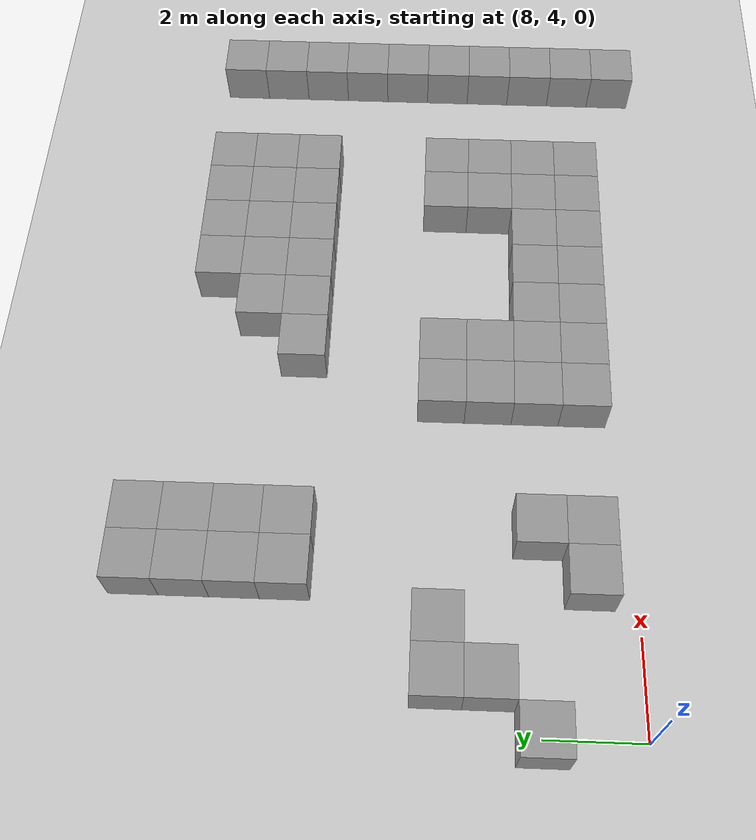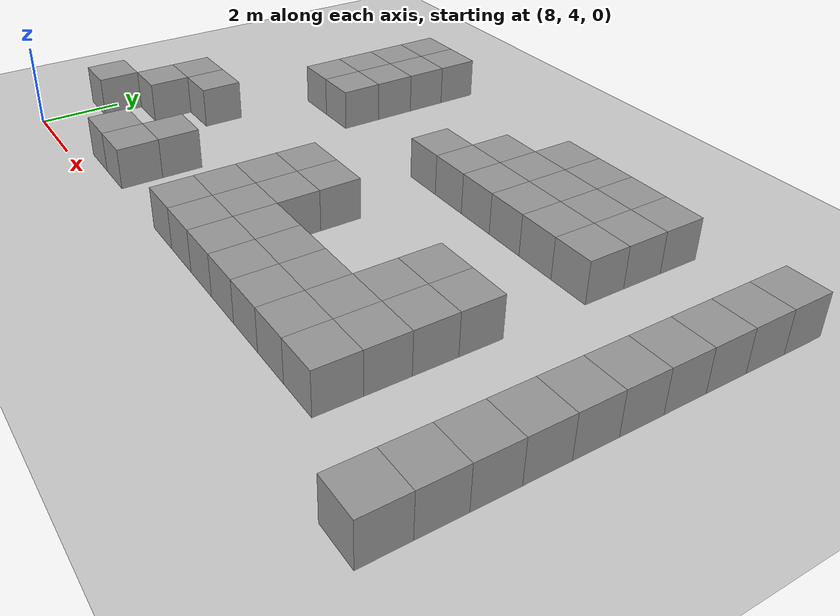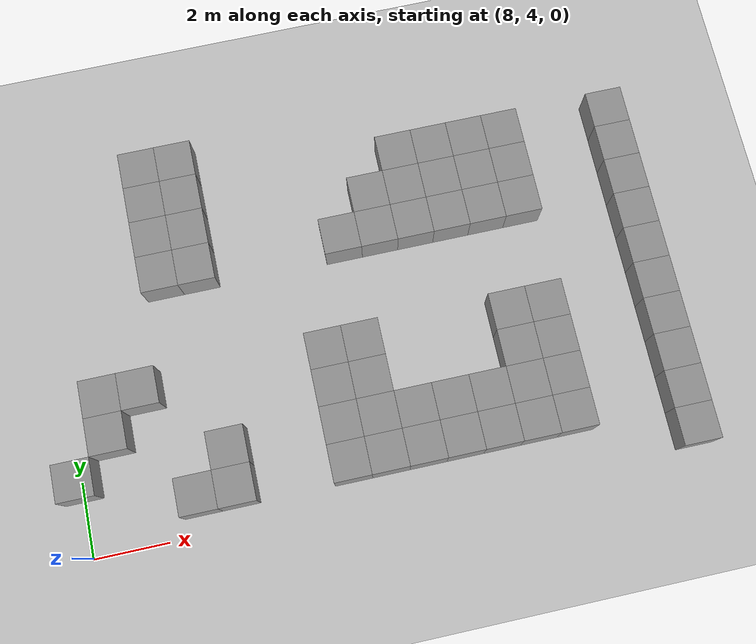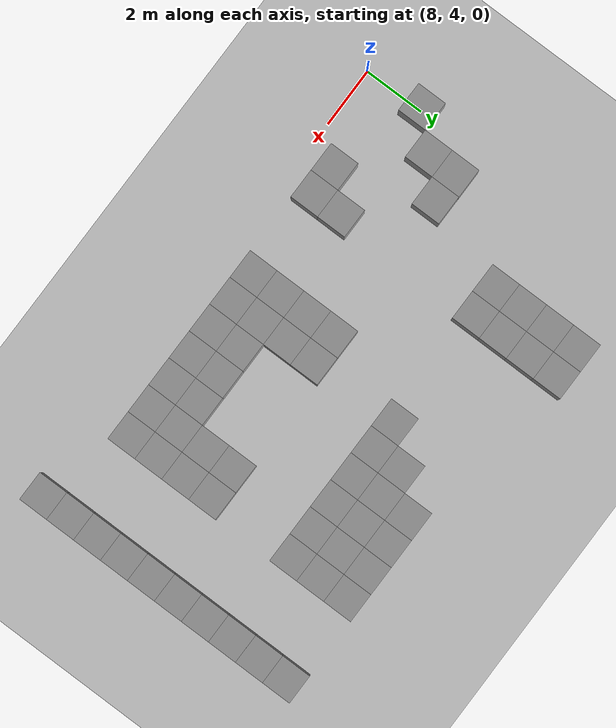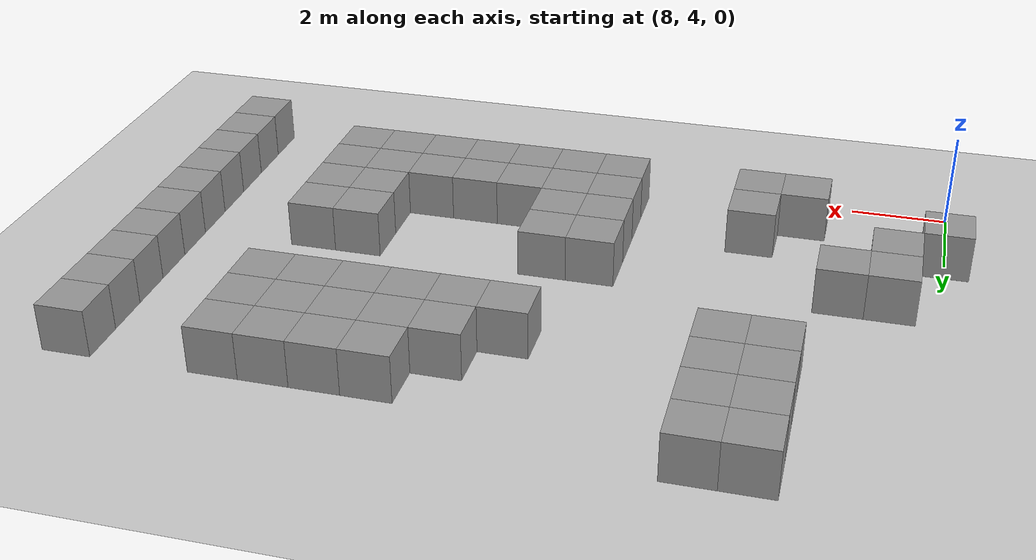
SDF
<sdf version="1.4">
 <world name="default">
  <model name="ground_plane">
   <static>true</static>
   <link name="link">
    <collision name="collision">
     <geometry><plane><normal>0 0 1</normal><size>100 100</size></plane></geometry>
     <surface><friction><ode><mu>100</mu><mu2>50</mu2></ode></friction></surface>
    </collision>
    <visual name="visual">
     <cast_shadows>0</cast_shadows>
     <geometry><plane><normal>0 0 1</normal><size>100 100</size></plane></geometry>
     <material>
      <script><uri>file://media/materials/scripts/gazebo.material</uri><name>Gazebo/Grey</name></script>
     </material>
    </visual>
    <velocity_decay><linear>0</linear><angular>0</angular></velocity_decay>
   </link>
  </model>
  <model name="unit_box_160">
   <pose>24 13.0005 0.5 0 -0 2.1e-05</pose>
   <static>true</static>
   <link name="link">
    <inertial>
     <mass>1</mass>
     <inertia><ixx>1</ixx><ixy>0</ixy><ixz>0</ixz><iyy>1</iyy><iyz>0</iyz><izz>1</izz></inertia>
    </inertial>
    <collision name="collision"><geometry><box><size>1 1 1</size></box></geometry></collision>
    <visual name="visual">
     <geometry><box><size>1 1 1</size></box></geometry>
     <material>
      <script><uri>file://media/materials/scripts/gazebo.material</uri><name>Gazebo/Grey</name></script>
     </material>
    </visual>
    <velocity_decay><linear>0</linear><angular>0</angular></velocity_decay>
   </link>
   <static>true</static>
  </model>
  <model name="unit_box_161">
   <pose>24.0001 12.0005 0.5 0 -0 2.2e-05</pose>
   <static>true</static>
   <link name="link">
    <inertial>
     <mass>1</mass>
     <inertia><ixx>1</ixx><ixy>0</ixy><ixz>0</ixz><iyy>1</iyy><iyz>0</iyz><izz>1</izz></inertia>
    </inertial>
    <collision name="collision"><geometry><box><size>1 1 1</size></box></geometry></collision>
    <visual name="visual">
     <geometry><box><size>1 1 1</size></box></geometry>
     <material>
      <script><uri>file://media/materials/scripts/gazebo.material</uri><name>Gazebo/Grey</name></script>
     </material>
    </visual>
    <velocity_decay><linear>0</linear><angular>0</angular></velocity_decay>
   </link>
   <static>true</static>
  </model>
  <model name="unit_box_162">
   <pose>24.0002 11.0004 0.5 0 -0 4e-05</pose>
   <static>true</static>
   <link name="link">
    <inertial>
     <mass>1</mass>
     <inertia><ixx>1</ixx><ixy>0</ixy><ixz>0</ixz><iyy>1</iyy><iyz>0</iyz><izz>1</izz></inertia>
    </inertial>
    <collision name="collision"><geometry><box><size>1 1 1</size></box></geometry></collision>
    <visual name="visual">
     <geometry><box><size>1 1 1</size></box></geometry>
     <material>
      <script><uri>file://media/materials/scripts/gazebo.material</uri><name>Gazebo/Grey</name></script>
     </material>
    </visual>
    <velocity_decay><linear>0</linear><angular>0</angular></velocity_decay>
   </link>
   <static>true</static>
  </model>
  <model name="unit_box_188">
   <pose>24.0001 10.0004 0.5 0 -0 3.9e-05</pose>
   <static>true</static>
   <link name="link">
    <inertial>
     <mass>1</mass>
     <inertia><ixx>1</ixx><ixy>0</ixy><ixz>0</ixz><iyy>1</iyy><iyz>0</iyz><izz>1</izz></inertia>
    </inertial>
    <collision name="collision"><geometry><box><size>1 1 1</size></box></geometry></collision>
    <visual name="visual">
     <geometry><box><size>1 1 1</size></box></geometry>
     <material>
      <script><uri>file://media/materials/scripts/gazebo.material</uri><name>Gazebo/Grey</name></script>
     </material>
    </visual>
    <velocity_decay><linear>0</linear><angular>0</angular></velocity_decay>
   </link>
   <static>true</static>
  </model>
  <model name="unit_box_189">
   <pose>24.0001 9.00043 0.5 0 -0 4.6e-05</pose>
   <static>true</static>
   <link name="link">
    <inertial>
     <mass>1</mass>
     <inertia><ixx>1</ixx><ixy>0</ixy><ixz>0</ixz><iyy>1</iyy><iyz>0</iyz><izz>1</izz></inertia>
    </inertial>
    <collision name="collision"><geometry><box><size>1 1 1</size></box></geometry></collision>
    <visual name="visual">
     <geometry><box><size>1 1 1</size></box></geometry>
     <material>
      <script><uri>file://media/materials/scripts/gazebo.material</uri><name>Gazebo/Grey</name></script>
     </material>
    </visual>
    <velocity_decay><linear>0</linear><angular>0</angular></velocity_decay>
   </link>
   <static>true</static>
  </model>
  <model name="unit_box_190">
   <pose>24.0001 8.00042 0.5 0 -0 3.9e-05</pose>
   <static>true</static>
   <link name="link">
    <inertial>
     <mass>1</mass>
     <inertia><ixx>1</ixx><ixy>0</ixy><ixz>0</ixz><iyy>1</iyy><iyz>0</iyz><izz>1</izz></inertia>
    </inertial>
    <collision name="collision"><geometry><box><size>1 1 1</size></box></geometry></collision>
    <visual name="visual">
     <geometry><box><size>1 1 1</size></box></geometry>
     <material>
      <script><uri>file://media/materials/scripts/gazebo.material</uri><name>Gazebo/Grey</name></script>
     </material>
    </visual>
    <velocity_decay><linear>0</linear><angular>0</angular></velocity_decay>
   </link>
   <static>true</static>
  </model>
  <model name="unit_box_191">
   <pose>24.0002 7.00042 0.5 0 -0 3.8e-05</pose>
   <static>true</static>
   <link name="link">
    <inertial>
     <mass>1</mass>
     <inertia><ixx>1</ixx><ixy>0</ixy><ixz>0</ixz><iyy>1</iyy><iyz>0</iyz><izz>1</izz></inertia>
    </inertial>
    <collision name="collision"><geometry><box><size>1 1 1</size></box></geometry></collision>
    <visual name="visual">
     <geometry><box><size>1 1 1</size></box></geometry>
     <material>
      <script><uri>file://media/materials/scripts/gazebo.material</uri><name>Gazebo/Grey</name></script>
     </material>
    </visual>
    <velocity_decay><linear>0</linear><angular>0</angular></velocity_decay>
   </link>
   <static>true</static>
  </model>
  <model name="unit_box_192">
   <pose>24.0014 6.00042 0.5 0 -0 3.8e-05</pose>
   <static>true</static>
   <link name="link">
    <inertial>
     <mass>1</mass>
     <inertia><ixx>1</ixx><ixy>0</ixy><ixz>0</ixz><iyy>1</iyy><iyz>0</iyz><izz>1</izz></inertia>
    </inertial>
    <collision name="collision"><geometry><box><size>1 1 1</size></box></geometry></collision>
    <visual name="visual">
     <geometry><box><size>1 1 1</size></box></geometry>
     <material>
      <script><uri>file://media/materials/scripts/gazebo.material</uri><name>Gazebo/Grey</name></script>
     </material>
    </visual>
    <velocity_decay><linear>0</linear><angular>0</angular></velocity_decay>
   </link>
   <static>true</static>
  </model>
  <model name="unit_box_194">
   <pose>24.0008 5.00042 0.5 0 -0 3.8e-05</pose>
   <static>true</static>
   <link name="link">
    <inertial>
     <mass>1</mass>
     <inertia><ixx>1</ixx><ixy>0</ixy><ixz>0</ixz><iyy>1</iyy><iyz>0</iyz><izz>1</izz></inertia>
    </inertial>
    <collision name="collision"><geometry><box><size>1 1 1</size></box></geometry></collision>
    <visual name="visual">
     <geometry><box><size>1 1 1</size></box></geometry>
     <material>
      <script><uri>file://media/materials/scripts/gazebo.material</uri><name>Gazebo/Grey</name></script>
     </material>
    </visual>
    <velocity_decay><linear>0</linear><angular>0</angular></velocity_decay>
   </link>
   <static>true</static>
  </model>
  <model name="unit_box_195">
   <pose>24.0001 4.00041 0.5 0 -0 5.9e-05</pose>
   <static>true</static>
   <link name="link">
    <inertial>
     <mass>1</mass>
     <inertia><ixx>1</ixx><ixy>0</ixy><ixz>0</ixz><iyy>1</iyy><iyz>0</iyz><izz>1</izz></inertia>
    </inertial>
    <collision name="collision"><geometry><box><size>1 1 1</size></box></geometry></collision>
    <visual name="visual">
     <geometry><box><size>1 1 1</size></box></geometry>
     <material>
      <script><uri>file://media/materials/scripts/gazebo.material</uri><name>Gazebo/Grey</name></script>
     </material>
    </visual>
    <velocity_decay><linear>0</linear><angular>0</angular></velocity_decay>
   </link>
   <static>true</static>
  </model>
  <model name="unit_box_217_0">
   <pose>8.00001 6.00001 0.5 0 -0 6e-06</pose>
   <link name="link">
    <inertial>
     <mass>1</mass>
     <inertia><ixx>1</ixx><ixy>0</ixy><ixz>0</ixz><iyy>1</iyy><iyz>0</iyz><izz>1</izz></inertia>
    </inertial>
    <collision name="collision"><geometry><box><size>1 1 1</size></box></geometry></collision>
    <visual name="visual">
     <geometry><box><size>1 1 1</size></box></geometry>
     <material>
      <script><uri>file://media/materials/scripts/gazebo.material</uri><name>Gazebo/Grey</name></script>
     </material>
    </visual>
    <velocity_decay><linear>0</linear><angular>0</angular></velocity_decay>
   </link>
   <static>true</static>
  </model>
  <model name="unit_box_225_0">
   <pose>9.00001 7 0.5 0 -0 7e-06</pose>
   <link name="link">
    <inertial>
     <mass>1</mass>
     <inertia><ixx>1</ixx><ixy>0</ixy><ixz>0</ixz><iyy>1</iyy><iyz>0</iyz><izz>1</izz></inertia>
    </inertial>
    <collision name="collision"><geometry><box><size>1 1 1</size></box></geometry></collision>
    <visual name="visual">
     <geometry><box><size>1 1 1</size></box></geometry>
     <material>
      <script><uri>file://media/materials/scripts/gazebo.material</uri><name>Gazebo/Grey</name></script>
     </material>
    </visual>
    <velocity_decay><linear>0</linear><angular>0</angular></velocity_decay>
   </link>
   <static>true</static>
  </model>
  <model name="unit_box_228_0">
   <pose>10 8.00001 0.5 0 -0 5e-06</pose>
   <link name="link">
    <inertial>
     <mass>1</mass>
     <inertia><ixx>1</ixx><ixy>0</ixy><ixz>0</ixz><iyy>1</iyy><iyz>0</iyz><izz>1</izz></inertia>
    </inertial>
    <collision name="collision"><geometry><box><size>1 1 1</size></box></geometry></collision>
    <visual name="visual">
     <geometry><box><size>1 1 1</size></box></geometry>
     <material>
      <script><uri>file://media/materials/scripts/gazebo.material</uri><name>Gazebo/Grey</name></script>
     </material>
    </visual>
    <velocity_decay><linear>0</linear><angular>0</angular></velocity_decay>
   </link>
   <static>true</static>
  </model>
  <model name="unit_box_229_0">
   <pose>9 8 0.5 0 -0 5e-06</pose>
   <link name="link">
    <inertial>
     <mass>1</mass>
     <inertia><ixx>1</ixx><ixy>0</ixy><ixz>0</ixz><iyy>1</iyy><iyz>0</iyz><izz>1</izz></inertia>
    </inertial>
    <collision name="collision"><geometry><box><size>1 1 1</size></box></geometry></collision>
    <visual name="visual">
     <geometry><box><size>1 1 1</size></box></geometry>
     <material>
      <script><uri>file://media/materials/scripts/gazebo.material</uri><name>Gazebo/Grey</name></script>
     </material>
    </visual>
    <velocity_decay><linear>0</linear><angular>0</angular></velocity_decay>
   </link>
   <static>true</static>
  </model>
  <model name="unit_box_234_0">
   <pose>12 5 0.5 0 -0 1e-06</pose>
   <link name="link">
    <inertial>
     <mass>1</mass>
     <inertia><ixx>1</ixx><ixy>0</ixy><ixz>0</ixz><iyy>1</iyy><iyz>0</iyz><izz>1</izz></inertia>
    </inertial>
    <collision name="collision"><geometry><box><size>1 1 1</size></box></geometry></collision>
    <visual name="visual">
     <geometry><box><size>1 1 1</size></box></geometry>
     <material>
      <script><uri>file://media/materials/scripts/gazebo.material</uri><name>Gazebo/Grey</name></script>
     </material>
    </visual>
    <velocity_decay><linear>0</linear><angular>0</angular></velocity_decay>
   </link>
   <static>true</static>
  </model>
  <model name="unit_box_235_0">
   <pose>11 5 0.5 0 -0 1e-06</pose>
   <link name="link">
    <inertial>
     <mass>1</mass>
     <inertia><ixx>1</ixx><ixy>0</ixy><ixz>0</ixz><iyy>1</iyy><iyz>0</iyz><izz>1</izz></inertia>
    </inertial>
    <collision name="collision"><geometry><box><size>1 1 1</size></box></geometry></collision>
    <visual name="visual">
     <geometry><box><size>1 1 1</size></box></geometry>
     <material>
      <script><uri>file://media/materials/scripts/gazebo.material</uri><name>Gazebo/Grey</name></script>
     </material>
    </visual>
    <velocity_decay><linear>0</linear><angular>0</angular></velocity_decay>
   </link>
   <static>true</static>
  </model>
  <model name="unit_box_236_0">
   <pose>12 6 0.5 0 -0 1e-06</pose>
   <link name="link">
    <inertial>
     <mass>1</mass>
     <inertia><ixx>1</ixx><ixy>0</ixy><ixz>0</ixz><iyy>1</iyy><iyz>0</iyz><izz>1</izz></inertia>
    </inertial>
    <collision name="collision"><geometry><box><size>1 1 1</size></box></geometry></collision>
    <visual name="visual">
     <geometry><box><size>1 1 1</size></box></geometry>
     <material>
      <script><uri>file://media/materials/scripts/gazebo.material</uri><name>Gazebo/Grey</name></script>
     </material>
    </visual>
    <velocity_decay><linear>0</linear><angular>0</angular></velocity_decay>
   </link>
   <static>true</static>
  </model>
  <model name="unit_box_289">
   <pose>15 5 0.5 0 0 -5e-06</pose>
   <link name="link">
    <inertial>
     <mass>1</mass>
     <inertia><ixx>1</ixx><ixy>0</ixy><ixz>0</ixz><iyy>1</iyy><iyz>0</iyz><izz>1</izz></inertia>
    </inertial>
    <collision name="collision"><geometry><box><size>1 1 1</size></box></geometry></collision>
    <visual name="visual">
     <geometry><box><size>1 1 1</size></box></geometry>
     <material>
      <script><uri>file://media/materials/scripts/gazebo.material</uri><name>Gazebo/Grey</name></script>
     </material>
    </visual>
    <velocity_decay><linear>0</linear><angular>0</angular></velocity_decay>
   </link>
   <static>true</static>
  </model>
  <model name="unit_box_290">
   <pose>15 6 0.5 0 -0 -4e-06</pose>
   <link name="link">
    <inertial>
     <mass>1</mass>
     <inertia><ixx>1</ixx><ixy>0</ixy><ixz>0</ixz><iyy>1</iyy><iyz>0</iyz><izz>1</izz></inertia>
    </inertial>
    <collision name="collision"><geometry><box><size>1 1 1</size></box></geometry></collision>
    <visual name="visual">
     <geometry><box><size>1 1 1</size></box></geometry>
     <material>
      <script><uri>file://media/materials/scripts/gazebo.material</uri><name>Gazebo/Grey</name></script>
     </material>
    </visual>
    <velocity_decay><linear>0</linear><angular>0</angular></velocity_decay>
   </link>
   <static>true</static>
  </model>
  <model name="unit_box_291">
   <pose>15 7 0.5 -0 -0 -4e-06</pose>
   <link name="link">
    <inertial>
     <mass>1</mass>
     <inertia><ixx>1</ixx><ixy>0</ixy><ixz>0</ixz><iyy>1</iyy><iyz>0</iyz><izz>1</izz></inertia>
    </inertial>
    <collision name="collision"><geometry><box><size>1 1 1</size></box></geometry></collision>
    <visual name="visual">
     <geometry><box><size>1 1 1</size></box></geometry>
     <material>
      <script><uri>file://media/materials/scripts/gazebo.material</uri><name>Gazebo/Grey</name></script>
     </material>
    </visual>
    <velocity_decay><linear>0</linear><angular>0</angular></velocity_decay>
   </link>
   <static>true</static>
  </model>
  <model name="unit_box_292">
   <pose>15 8 0.5 0 -0 -4e-06</pose>
   <link name="link">
    <inertial>
     <mass>1</mass>
     <inertia><ixx>1</ixx><ixy>0</ixy><ixz>0</ixz><iyy>1</iyy><iyz>0</iyz><izz>1</izz></inertia>
    </inertial>
    <collision name="collision"><geometry><box><size>1 1 1</size></box></geometry></collision>
    <visual name="visual">
     <geometry><box><size>1 1 1</size></box></geometry>
     <material>
      <script><uri>file://media/materials/scripts/gazebo.material</uri><name>Gazebo/Grey</name></script>
     </material>
    </visual>
    <velocity_decay><linear>0</linear><angular>0</angular></velocity_decay>
   </link>
   <static>true</static>
  </model>
  <model name="unit_box_293">
   <pose>16 4.99999 0.5 0 0 -4e-06</pose>
   <link name="link">
    <inertial>
     <mass>1</mass>
     <inertia><ixx>1</ixx><ixy>0</ixy><ixz>0</ixz><iyy>1</iyy><iyz>0</iyz><izz>1</izz></inertia>
    </inertial>
    <collision name="collision"><geometry><box><size>1 1 1</size></box></geometry></collision>
    <visual name="visual">
     <geometry><box><size>1 1 1</size></box></geometry>
     <material>
      <script><uri>file://media/materials/scripts/gazebo.material</uri><name>Gazebo/Grey</name></script>
     </material>
    </visual>
    <velocity_decay><linear>0</linear><angular>0</angular></velocity_decay>
   </link>
   <static>true</static>
  </model>
  <model name="unit_box_294">
   <pose>17 5 0.5 0 -0 -5e-06</pose>
   <link name="link">
    <inertial>
     <mass>1</mass>
     <inertia><ixx>1</ixx><ixy>0</ixy><ixz>0</ixz><iyy>1</iyy><iyz>0</iyz><izz>1</izz></inertia>
    </inertial>
    <collision name="collision"><geometry><box><size>1 1 1</size></box></geometry></collision>
    <visual name="visual">
     <geometry><box><size>1 1 1</size></box></geometry>
     <material>
      <script><uri>file://media/materials/scripts/gazebo.material</uri><name>Gazebo/Grey</name></script>
     </material>
    </visual>
    <velocity_decay><linear>0</linear><angular>0</angular></velocity_decay>
   </link>
   <static>true</static>
  </model>
  <model name="unit_box_295">
   <pose>18 4.99999 0.5 0 0 -5e-06</pose>
   <link name="link">
    <inertial>
     <mass>1</mass>
     <inertia><ixx>1</ixx><ixy>0</ixy><ixz>0</ixz><iyy>1</iyy><iyz>0</iyz><izz>1</izz></inertia>
    </inertial>
    <collision name="collision"><geometry><box><size>1 1 1</size></box></geometry></collision>
    <visual name="visual">
     <geometry><box><size>1 1 1</size></box></geometry>
     <material>
      <script><uri>file://media/materials/scripts/gazebo.material</uri><name>Gazebo/Grey</name></script>
     </material>
    </visual>
    <velocity_decay><linear>0</linear><angular>0</angular></velocity_decay>
   </link>
   <static>true</static>
  </model>
  <model name="unit_box_296">
   <pose>19 5 0.5 0 0 -3e-06</pose>
   <link name="link">
    <inertial>
     <mass>1</mass>
     <inertia><ixx>1</ixx><ixy>0</ixy><ixz>0</ixz><iyy>1</iyy><iyz>0</iyz><izz>1</izz></inertia>
    </inertial>
    <collision name="collision"><geometry><box><size>1 1 1</size></box></geometry></collision>
    <visual name="visual">
     <geometry><box><size>1 1 1</size></box></geometry>
     <material>
      <script><uri>file://media/materials/scripts/gazebo.material</uri><name>Gazebo/Grey</name></script>
     </material>
    </visual>
    <velocity_decay><linear>0</linear><angular>0</angular></velocity_decay>
   </link>
   <static>true</static>
  </model>
  <model name="unit_box_297">
   <pose>20 5 0.5 0 -0 -1e-06</pose>
   <link name="link">
    <inertial>
     <mass>1</mass>
     <inertia><ixx>1</ixx><ixy>0</ixy><ixz>0</ixz><iyy>1</iyy><iyz>0</iyz><izz>1</izz></inertia>
    </inertial>
    <collision name="collision"><geometry><box><size>1 1 1</size></box></geometry></collision>
    <visual name="visual">
     <geometry><box><size>1 1 1</size></box></geometry>
     <material>
      <script><uri>file://media/materials/scripts/gazebo.material</uri><name>Gazebo/Grey</name></script>
     </material>
    </visual>
    <velocity_decay><linear>0</linear><angular>0</angular></velocity_decay>
   </link>
   <static>true</static>
  </model>
  <model name="unit_box_298">
   <pose>21 4.99999 0.5 -0 -0 -2e-06</pose>
   <link name="link">
    <inertial>
     <mass>1</mass>
     <inertia><ixx>1</ixx><ixy>0</ixy><ixz>0</ixz><iyy>1</iyy><iyz>0</iyz><izz>1</izz></inertia>
    </inertial>
    <collision name="collision"><geometry><box><size>1 1 1</size></box></geometry></collision>
    <visual name="visual">
     <geometry><box><size>1 1 1</size></box></geometry>
     <material>
      <script><uri>file://media/materials/scripts/gazebo.material</uri><name>Gazebo/Grey</name></script>
     </material>
    </visual>
    <velocity_decay><linear>0</linear><angular>0</angular></velocity_decay>
   </link>
   <static>true</static>
  </model>
  <model name="unit_box_299">
   <pose>21 5.99999 0.5 0 0 -4e-06</pose>
   <link name="link">
    <inertial>
     <mass>1</mass>
     <inertia><ixx>1</ixx><ixy>0</ixy><ixz>0</ixz><iyy>1</iyy><iyz>0</iyz><izz>1</izz></inertia>
    </inertial>
    <collision name="collision"><geometry><box><size>1 1 1</size></box></geometry></collision>
    <visual name="visual">
     <geometry><box><size>1 1 1</size></box></geometry>
     <material>
      <script><uri>file://media/materials/scripts/gazebo.material</uri><name>Gazebo/Grey</name></script>
     </material>
    </visual>
    <velocity_decay><linear>0</linear><angular>0</angular></velocity_decay>
   </link>
   <static>true</static>
  </model>
  <model name="unit_box_300">
   <pose>21 7 0.5 0 0 -7e-06</pose>
   <link name="link">
    <inertial>
     <mass>1</mass>
     <inertia><ixx>1</ixx><ixy>0</ixy><ixz>0</ixz><iyy>1</iyy><iyz>0</iyz><izz>1</izz></inertia>
    </inertial>
    <collision name="collision"><geometry><box><size>1 1 1</size></box></geometry></collision>
    <visual name="visual">
     <geometry><box><size>1 1 1</size></box></geometry>
     <material>
      <script><uri>file://media/materials/scripts/gazebo.material</uri><name>Gazebo/Grey</name></script>
     </material>
    </visual>
    <velocity_decay><linear>0</linear><angular>0</angular></velocity_decay>
   </link>
   <static>true</static>
  </model>
  <model name="unit_box_301">
   <pose>21 8.00001 0.5 0 0 -3e-06</pose>
   <link name="link">
    <inertial>
     <mass>1</mass>
     <inertia><ixx>1</ixx><ixy>0</ixy><ixz>0</ixz><iyy>1</iyy><iyz>0</iyz><izz>1</izz></inertia>
    </inertial>
    <collision name="collision"><geometry><box><size>1 1 1</size></box></geometry></collision>
    <visual name="visual">
     <geometry><box><size>1 1 1</size></box></geometry>
     <material>
      <script><uri>file://media/materials/scripts/gazebo.material</uri><name>Gazebo/Grey</name></script>
     </material>
    </visual>
    <velocity_decay><linear>0</linear><angular>0</angular></velocity_decay>
   </link>
   <static>true</static>
  </model>
  <model name="unit_box_302">
   <pose>20 8.00001 0.5 0 -0 -3e-06</pose>
   <link name="link">
    <inertial>
     <mass>1</mass>
     <inertia><ixx>1</ixx><ixy>0</ixy><ixz>0</ixz><iyy>1</iyy><iyz>0</iyz><izz>1</izz></inertia>
    </inertial>
    <collision name="collision"><geometry><box><size>1 1 1</size></box></geometry></collision>
    <visual name="visual">
     <geometry><box><size>1 1 1</size></box></geometry>
     <material>
      <script><uri>file://media/materials/scripts/gazebo.material</uri><name>Gazebo/Grey</name></script>
     </material>
    </visual>
    <velocity_decay><linear>0</linear><angular>0</angular></velocity_decay>
   </link>
   <static>true</static>
  </model>
  <model name="unit_box_303">
   <pose>20 7 0.5 0 0 -3e-06</pose>
   <link name="link">
    <inertial>
     <mass>1</mass>
     <inertia><ixx>1</ixx><ixy>0</ixy><ixz>0</ixz><iyy>1</iyy><iyz>0</iyz><izz>1</izz></inertia>
    </inertial>
    <collision name="collision"><geometry><box><size>1 1 1</size></box></geometry></collision>
    <visual name="visual">
     <geometry><box><size>1 1 1</size></box></geometry>
     <material>
      <script><uri>file://media/materials/scripts/gazebo.material</uri><name>Gazebo/Grey</name></script>
     </material>
    </visual>
    <velocity_decay><linear>0</linear><angular>0</angular></velocity_decay>
   </link>
   <static>true</static>
  </model>
  <model name="unit_box_304">
   <pose>20 6 0.5 -0 -0 -4e-06</pose>
   <link name="link">
    <inertial>
     <mass>1</mass>
     <inertia><ixx>1</ixx><ixy>0</ixy><ixz>0</ixz><iyy>1</iyy><iyz>0</iyz><izz>1</izz></inertia>
    </inertial>
    <collision name="collision"><geometry><box><size>1 1 1</size></box></geometry></collision>
    <visual name="visual">
     <geometry><box><size>1 1 1</size></box></geometry>
     <material>
      <script><uri>file://media/materials/scripts/gazebo.material</uri><name>Gazebo/Grey</name></script>
     </material>
    </visual>
    <velocity_decay><linear>0</linear><angular>0</angular></velocity_decay>
   </link>
   <static>true</static>
  </model>
  <model name="unit_box_305">
   <pose>19 6.00001 0.5 -0 -0 -1e-06</pose>
   <link name="link">
    <inertial>
     <mass>1</mass>
     <inertia><ixx>1</ixx><ixy>0</ixy><ixz>0</ixz><iyy>1</iyy><iyz>0</iyz><izz>1</izz></inertia>
    </inertial>
    <collision name="collision"><geometry><box><size>1 1 1</size></box></geometry></collision>
    <visual name="visual">
     <geometry><box><size>1 1 1</size></box></geometry>
     <material>
      <script><uri>file://media/materials/scripts/gazebo.material</uri><name>Gazebo/Grey</name></script>
     </material>
    </visual>
    <velocity_decay><linear>0</linear><angular>0</angular></velocity_decay>
   </link>
   <static>true</static>
  </model>
  <model name="unit_box_306">
   <pose>18 6 0.5 -0 -0 -0</pose>
   <link name="link">
    <inertial>
     <mass>1</mass>
     <inertia><ixx>1</ixx><ixy>0</ixy><ixz>0</ixz><iyy>1</iyy><iyz>0</iyz><izz>1</izz></inertia>
    </inertial>
    <collision name="collision"><geometry><box><size>1 1 1</size></box></geometry></collision>
    <visual name="visual">
     <geometry><box><size>1 1 1</size></box></geometry>
     <material>
      <script><uri>file://media/materials/scripts/gazebo.material</uri><name>Gazebo/Grey</name></script>
     </material>
    </visual>
    <velocity_decay><linear>0</linear><angular>0</angular></velocity_decay>
   </link>
   <static>true</static>
  </model>
  <model name="unit_box_307">
   <pose>17 6.00002 0.5 0 -0 -2e-06</pose>
   <link name="link">
    <inertial>
     <mass>1</mass>
     <inertia><ixx>1</ixx><ixy>0</ixy><ixz>0</ixz><iyy>1</iyy><iyz>0</iyz><izz>1</izz></inertia>
    </inertial>
    <collision name="collision"><geometry><box><size>1 1 1</size></box></geometry></collision>
    <visual name="visual">
     <geometry><box><size>1 1 1</size></box></geometry>
     <material>
      <script><uri>file://media/materials/scripts/gazebo.material</uri><name>Gazebo/Grey</name></script>
     </material>
    </visual>
    <velocity_decay><linear>0</linear><angular>0</angular></velocity_decay>
   </link>
   <static>true</static>
  </model>
  <model name="unit_box_308">
   <pose>16 5.99999 0.5 -0 -0 -4e-06</pose>
   <link name="link">
    <inertial>
     <mass>1</mass>
     <inertia><ixx>1</ixx><ixy>0</ixy><ixz>0</ixz><iyy>1</iyy><iyz>0</iyz><izz>1</izz></inertia>
    </inertial>
    <collision name="collision"><geometry><box><size>1 1 1</size></box></geometry></collision>
    <visual name="visual">
     <geometry><box><size>1 1 1</size></box></geometry>
     <material>
      <script><uri>file://media/materials/scripts/gazebo.material</uri><name>Gazebo/Grey</name></script>
     </material>
    </visual>
    <velocity_decay><linear>0</linear><angular>0</angular></velocity_decay>
   </link>
   <static>true</static>
  </model>
  <model name="unit_box_309">
   <pose>16 7 0.5 0 0 -5e-06</pose>
   <link name="link">
    <inertial>
     <mass>1</mass>
     <inertia><ixx>1</ixx><ixy>0</ixy><ixz>0</ixz><iyy>1</iyy><iyz>0</iyz><izz>1</izz></inertia>
    </inertial>
    <collision name="collision"><geometry><box><size>1 1 1</size></box></geometry></collision>
    <visual name="visual">
     <geometry><box><size>1 1 1</size></box></geometry>
     <material>
      <script><uri>file://media/materials/scripts/gazebo.material</uri><name>Gazebo/Grey</name></script>
     </material>
    </visual>
    <velocity_decay><linear>0</linear><angular>0</angular></velocity_decay>
   </link>
   <static>true</static>
  </model>
  <model name="unit_box_310">
   <pose>16 8 0.5 0 0 -5e-06</pose>
   <link name="link">
    <inertial>
     <mass>1</mass>
     <inertia><ixx>1</ixx><ixy>0</ixy><ixz>0</ixz><iyy>1</iyy><iyz>0</iyz><izz>1</izz></inertia>
    </inertial>
    <collision name="collision"><geometry><box><size>1 1 1</size></box></geometry></collision>
    <visual name="visual">
     <geometry><box><size>1 1 1</size></box></geometry>
     <material>
      <script><uri>file://media/materials/scripts/gazebo.material</uri><name>Gazebo/Grey</name></script>
     </material>
    </visual>
    <velocity_decay><linear>0</linear><angular>0</angular></velocity_decay>
   </link>
   <static>true</static>
  </model>
  <model name="unit_box_339">
   <pose>11 14 0.5 -0 -0 -2e-06</pose>
   <link name="link">
    <inertial>
     <mass>1</mass>
     <inertia><ixx>1</ixx><ixy>0</ixy><ixz>0</ixz><iyy>1</iyy><iyz>0</iyz><izz>1</izz></inertia>
    </inertial>
    <collision name="collision"><geometry><box><size>1 1 1</size></box></geometry></collision>
    <visual name="visual">
     <geometry><box><size>1 1 1</size></box></geometry>
     <material>
      <script><uri>file://media/materials/scripts/gazebo.material</uri><name>Gazebo/Grey</name></script>
     </material>
    </visual>
    <velocity_decay><linear>0</linear><angular>0</angular></velocity_decay>
   </link>
   <static>true</static>
  </model>
  <model name="unit_box_340">
   <pose>11 13 0.5 0 -0 0</pose>
   <link name="link">
    <inertial>
     <mass>1</mass>
     <inertia><ixx>1</ixx><ixy>0</ixy><ixz>0</ixz><iyy>1</iyy><iyz>0</iyz><izz>1</izz></inertia>
    </inertial>
    <collision name="collision"><geometry><box><size>1 1 1</size></box></geometry></collision>
    <visual name="visual">
     <geometry><box><size>1 1 1</size></box></geometry>
     <material>
      <script><uri>file://media/materials/scripts/gazebo.material</uri><name>Gazebo/Grey</name></script>
     </material>
    </visual>
    <velocity_decay><linear>0</linear><angular>0</angular></velocity_decay>
   </link>
   <static>true</static>
  </model>
  <model name="unit_box_341">
   <pose>11 12 0.5 0 0 -1e-06</pose>
   <link name="link">
    <inertial>
     <mass>1</mass>
     <inertia><ixx>1</ixx><ixy>0</ixy><ixz>0</ixz><iyy>1</iyy><iyz>0</iyz><izz>1</izz></inertia>
    </inertial>
    <collision name="collision"><geometry><box><size>1 1 1</size></box></geometry></collision>
    <visual name="visual">
     <geometry><box><size>1 1 1</size></box></geometry>
     <material>
      <script><uri>file://media/materials/scripts/gazebo.material</uri><name>Gazebo/Grey</name></script>
     </material>
    </visual>
    <velocity_decay><linear>0</linear><angular>0</angular></velocity_decay>
   </link>
   <static>true</static>
  </model>
  <model name="unit_box_342">
   <pose>11 11 0.5 0 -0 0</pose>
   <link name="link">
    <inertial>
     <mass>1</mass>
     <inertia><ixx>1</ixx><ixy>0</ixy><ixz>0</ixz><iyy>1</iyy><iyz>0</iyz><izz>1</izz></inertia>
    </inertial>
    <collision name="collision"><geometry><box><size>1 1 1</size></box></geometry></collision>
    <visual name="visual">
     <geometry><box><size>1 1 1</size></box></geometry>
     <material>
      <script><uri>file://media/materials/scripts/gazebo.material</uri><name>Gazebo/Grey</name></script>
     </material>
    </visual>
    <velocity_decay><linear>0</linear><angular>0</angular></velocity_decay>
   </link>
   <static>true</static>
  </model>
  <model name="unit_box_343">
   <pose>12 11 0.5 0 -0 0</pose>
   <link name="link">
    <inertial>
     <mass>1</mass>
     <inertia><ixx>1</ixx><ixy>0</ixy><ixz>0</ixz><iyy>1</iyy><iyz>0</iyz><izz>1</izz></inertia>
    </inertial>
    <collision name="collision"><geometry><box><size>1 1 1</size></box></geometry></collision>
    <visual name="visual">
     <geometry><box><size>1 1 1</size></box></geometry>
     <material>
      <script><uri>file://media/materials/scripts/gazebo.material</uri><name>Gazebo/Grey</name></script>
     </material>
    </visual>
    <velocity_decay><linear>0</linear><angular>0</angular></velocity_decay>
   </link>
   <static>true</static>
  </model>
  <model name="unit_box_344">
   <pose>12 12 0.5 0 -0 0</pose>
   <link name="link">
    <inertial>
     <mass>1</mass>
     <inertia><ixx>1</ixx><ixy>0</ixy><ixz>0</ixz><iyy>1</iyy><iyz>0</iyz><izz>1</izz></inertia>
    </inertial>
    <collision name="collision"><geometry><box><size>1 1 1</size></box></geometry></collision>
    <visual name="visual">
     <geometry><box><size>1 1 1</size></box></geometry>
     <material>
      <script><uri>file://media/materials/scripts/gazebo.material</uri><name>Gazebo/Grey</name></script>
     </material>
    </visual>
    <velocity_decay><linear>0</linear><angular>0</angular></velocity_decay>
   </link>
   <static>true</static>
  </model>
  <model name="unit_box_345">
   <pose>12 13 0.5 0 -0 0</pose>
   <link name="link">
    <inertial>
     <mass>1</mass>
     <inertia><ixx>1</ixx><ixy>0</ixy><ixz>0</ixz><iyy>1</iyy><iyz>0</iyz><izz>1</izz></inertia>
    </inertial>
    <collision name="collision"><geometry><box><size>1 1 1</size></box></geometry></collision>
    <visual name="visual">
     <geometry><box><size>1 1 1</size></box></geometry>
     <material>
      <script><uri>file://media/materials/scripts/gazebo.material</uri><name>Gazebo/Grey</name></script>
     </material>
    </visual>
    <velocity_decay><linear>0</linear><angular>0</angular></velocity_decay>
   </link>
   <static>true</static>
  </model>
  <model name="unit_box_346">
   <pose>12 14 0.5 0 -0 0</pose>
   <link name="link">
    <inertial>
     <mass>1</mass>
     <inertia><ixx>1</ixx><ixy>0</ixy><ixz>0</ixz><iyy>1</iyy><iyz>0</iyz><izz>1</izz></inertia>
    </inertial>
    <collision name="collision"><geometry><box><size>1 1 1</size></box></geometry></collision>
    <visual name="visual">
     <geometry><box><size>1 1 1</size></box></geometry>
     <material>
      <script><uri>file://media/materials/scripts/gazebo.material</uri><name>Gazebo/Grey</name></script>
     </material>
    </visual>
    <velocity_decay><linear>0</linear><angular>0</angular></velocity_decay>
   </link>
   <static>true</static>
  </model>
  <model name="unit_box_387">
   <pose>21 13 0.5 0 -0 1e-06</pose>
   <link name="link">
    <inertial>
     <mass>1</mass>
     <inertia><ixx>1</ixx><ixy>0</ixy><ixz>0</ixz><iyy>1</iyy><iyz>0</iyz><izz>1</izz></inertia>
    </inertial>
    <collision name="collision"><geometry><box><size>1 1 1</size></box></geometry></collision>
    <visual name="visual">
     <geometry><box><size>1 1 1</size></box></geometry>
     <material>
      <script><uri>file://media/materials/scripts/gazebo.material</uri><name>Gazebo/Grey</name></script>
     </material>
    </visual>
    <velocity_decay><linear>0</linear><angular>0</angular></velocity_decay>
   </link>
   <static>true</static>
  </model>
  <model name="unit_box_388">
   <pose>21 12 0.5 0 -0 3e-06</pose>
   <link name="link">
    <inertial>
     <mass>1</mass>
     <inertia><ixx>1</ixx><ixy>0</ixy><ixz>0</ixz><iyy>1</iyy><iyz>0</iyz><izz>1</izz></inertia>
    </inertial>
    <collision name="collision"><geometry><box><size>1 1 1</size></box></geometry></collision>
    <visual name="visual">
     <geometry><box><size>1 1 1</size></box></geometry>
     <material>
      <script><uri>file://media/materials/scripts/gazebo.material</uri><name>Gazebo/Grey</name></script>
     </material>
    </visual>
    <velocity_decay><linear>0</linear><angular>0</angular></velocity_decay>
   </link>
   <static>true</static>
  </model>
  <model name="unit_box_389">
   <pose>21 11 0.5 0 -0 3e-06</pose>
   <link name="link">
    <inertial>
     <mass>1</mass>
     <inertia><ixx>1</ixx><ixy>0</ixy><ixz>0</ixz><iyy>1</iyy><iyz>0</iyz><izz>1</izz></inertia>
    </inertial>
    <collision name="collision"><geometry><box><size>1 1 1</size></box></geometry></collision>
    <visual name="visual">
     <geometry><box><size>1 1 1</size></box></geometry>
     <material>
      <script><uri>file://media/materials/scripts/gazebo.material</uri><name>Gazebo/Grey</name></script>
     </material>
    </visual>
    <velocity_decay><linear>0</linear><angular>0</angular></velocity_decay>
   </link>
   <static>true</static>
  </model>
  <model name="unit_box_390">
   <pose>20 11 0.5 0 -0 3e-06</pose>
   <link name="link">
    <inertial>
     <mass>1</mass>
     <inertia><ixx>1</ixx><ixy>0</ixy><ixz>0</ixz><iyy>1</iyy><iyz>0</iyz><izz>1</izz></inertia>
    </inertial>
    <collision name="collision"><geometry><box><size>1 1 1</size></box></geometry></collision>
    <visual name="visual">
     <geometry><box><size>1 1 1</size></box></geometry>
     <material>
      <script><uri>file://media/materials/scripts/gazebo.material</uri><name>Gazebo/Grey</name></script>
     </material>
    </visual>
    <velocity_decay><linear>0</linear><angular>0</angular></velocity_decay>
   </link>
   <static>true</static>
  </model>
  <model name="unit_box_391">
   <pose>20 12 0.5 0 -0 3e-06</pose>
   <link name="link">
    <inertial>
     <mass>1</mass>
     <inertia><ixx>1</ixx><ixy>0</ixy><ixz>0</ixz><iyy>1</iyy><iyz>0</iyz><izz>1</izz></inertia>
    </inertial>
    <collision name="collision"><geometry><box><size>1 1 1</size></box></geometry></collision>
    <visual name="visual">
     <geometry><box><size>1 1 1</size></box></geometry>
     <material>
      <script><uri>file://media/materials/scripts/gazebo.material</uri><name>Gazebo/Grey</name></script>
     </material>
    </visual>
    <velocity_decay><linear>0</linear><angular>0</angular></velocity_decay>
   </link>
   <static>true</static>
  </model>
  <model name="unit_box_392">
   <pose>20 13 0.5 0 -0 1e-06</pose>
   <link name="link">
    <inertial>
     <mass>1</mass>
     <inertia><ixx>1</ixx><ixy>0</ixy><ixz>0</ixz><iyy>1</iyy><iyz>0</iyz><izz>1</izz></inertia>
    </inertial>
    <collision name="collision"><geometry><box><size>1 1 1</size></box></geometry></collision>
    <visual name="visual">
     <geometry><box><size>1 1 1</size></box></geometry>
     <material>
      <script><uri>file://media/materials/scripts/gazebo.material</uri><name>Gazebo/Grey</name></script>
     </material>
    </visual>
    <velocity_decay><linear>0</linear><angular>0</angular></velocity_decay>
   </link>
   <static>true</static>
  </model>
  <model name="unit_box_396">
   <pose>19 13 0.5 0 -0 2e-06</pose>
   <link name="link">
    <inertial>
     <mass>1</mass>
     <inertia><ixx>1</ixx><ixy>0</ixy><ixz>0</ixz><iyy>1</iyy><iyz>0</iyz><izz>1</izz></inertia>
    </inertial>
    <collision name="collision"><geometry><box><size>1 1 1</size></box></geometry></collision>
    <visual name="visual">
     <geometry><box><size>1 1 1</size></box></geometry>
     <material>
      <script><uri>file://media/materials/scripts/gazebo.material</uri><name>Gazebo/Grey</name></script>
     </material>
    </visual>
    <velocity_decay><linear>0</linear><angular>0</angular></velocity_decay>
   </link>
   <static>true</static>
  </model>
  <model name="unit_box_397">
   <pose>19 12 0.5 0 -0 1e-06</pose>
   <link name="link">
    <inertial>
     <mass>1</mass>
     <inertia><ixx>1</ixx><ixy>0</ixy><ixz>0</ixz><iyy>1</iyy><iyz>0</iyz><izz>1</izz></inertia>
    </inertial>
    <collision name="collision"><geometry><box><size>1 1 1</size></box></geometry></collision>
    <visual name="visual">
     <geometry><box><size>1 1 1</size></box></geometry>
     <material>
      <script><uri>file://media/materials/scripts/gazebo.material</uri><name>Gazebo/Grey</name></script>
     </material>
    </visual>
    <velocity_decay><linear>0</linear><angular>0</angular></velocity_decay>
   </link>
   <static>true</static>
  </model>
  <model name="unit_box_398">
   <pose>19 11 0.5 0 -0 2e-06</pose>
   <link name="link">
    <inertial>
     <mass>1</mass>
     <inertia><ixx>1</ixx><ixy>0</ixy><ixz>0</ixz><iyy>1</iyy><iyz>0</iyz><izz>1</izz></inertia>
    </inertial>
    <collision name="collision"><geometry><box><size>1 1 1</size></box></geometry></collision>
    <visual name="visual">
     <geometry><box><size>1 1 1</size></box></geometry>
     <material>
      <script><uri>file://media/materials/scripts/gazebo.material</uri><name>Gazebo/Grey</name></script>
     </material>
    </visual>
    <velocity_decay><linear>0</linear><angular>0</angular></velocity_decay>
   </link>
   <static>true</static>
  </model>
  <model name="unit_box_399">
   <pose>18 13 0.5 0 -0 2e-06</pose>
   <link name="link">
    <inertial>
     <mass>1</mass>
     <inertia><ixx>1</ixx><ixy>0</ixy><ixz>0</ixz><iyy>1</iyy><iyz>0</iyz><izz>1</izz></inertia>
    </inertial>
    <collision name="collision"><geometry><box><size>1 1 1</size></box></geometry></collision>
    <visual name="visual">
     <geometry><box><size>1 1 1</size></box></geometry>
     <material>
      <script><uri>file://media/materials/scripts/gazebo.material</uri><name>Gazebo/Grey</name></script>
     </material>
    </visual>
    <velocity_decay><linear>0</linear><angular>0</angular></velocity_decay>
   </link>
   <static>true</static>
  </model>
  <model name="unit_box_400">
   <pose>18 12 0.5 0 0 -1e-06</pose>
   <link name="link">
    <inertial>
     <mass>1</mass>
     <inertia><ixx>1</ixx><ixy>0</ixy><ixz>0</ixz><iyy>1</iyy><iyz>0</iyz><izz>1</izz></inertia>
    </inertial>
    <collision name="collision"><geometry><box><size>1 1 1</size></box></geometry></collision>
    <visual name="visual">
     <geometry><box><size>1 1 1</size></box></geometry>
     <material>
      <script><uri>file://media/materials/scripts/gazebo.material</uri><name>Gazebo/Grey</name></script>
     </material>
    </visual>
    <velocity_decay><linear>0</linear><angular>0</angular></velocity_decay>
   </link>
   <static>true</static>
  </model>
  <model name="unit_box_401">
   <pose>18 11 0.5 0 -0 0</pose>
   <link name="link">
    <inertial>
     <mass>1</mass>
     <inertia><ixx>1</ixx><ixy>0</ixy><ixz>0</ixz><iyy>1</iyy><iyz>0</iyz><izz>1</izz></inertia>
    </inertial>
    <collision name="collision"><geometry><box><size>1 1 1</size></box></geometry></collision>
    <visual name="visual">
     <geometry><box><size>1 1 1</size></box></geometry>
     <material>
      <script><uri>file://media/materials/scripts/gazebo.material</uri><name>Gazebo/Grey</name></script>
     </material>
    </visual>
    <velocity_decay><linear>0</linear><angular>0</angular></velocity_decay>
   </link>
   <static>true</static>
  </model>
  <model name="unit_box_402">
   <pose>17 12 0.5 0 -0 0</pose>
   <link name="link">
    <inertial>
     <mass>1</mass>
     <inertia><ixx>1</ixx><ixy>0</ixy><ixz>0</ixz><iyy>1</iyy><iyz>0</iyz><izz>1</izz></inertia>
    </inertial>
    <collision name="collision"><geometry><box><size>1 1 1</size></box></geometry></collision>
    <visual name="visual">
     <geometry><box><size>1 1 1</size></box></geometry>
     <material>
      <script><uri>file://media/materials/scripts/gazebo.material</uri><name>Gazebo/Grey</name></script>
     </material>
    </visual>
    <velocity_decay><linear>0</linear><angular>0</angular></velocity_decay>
   </link>
   <static>true</static>
  </model>
  <model name="unit_box_403">
   <pose>17 11 0.5 -0 -0 -0</pose>
   <link name="link">
    <inertial>
     <mass>1</mass>
     <inertia><ixx>1</ixx><ixy>0</ixy><ixz>0</ixz><iyy>1</iyy><iyz>0</iyz><izz>1</izz></inertia>
    </inertial>
    <collision name="collision"><geometry><box><size>1 1 1</size></box></geometry></collision>
    <visual name="visual">
     <geometry><box><size>1 1 1</size></box></geometry>
     <material>
      <script><uri>file://media/materials/scripts/gazebo.material</uri><name>Gazebo/Grey</name></script>
     </material>
    </visual>
    <velocity_decay><linear>0</linear><angular>0</angular></velocity_decay>
   </link>
   <static>true</static>
  </model>
  <model name="unit_box_404">
   <pose>16 11 0.5 0 -0 0</pose>
   <link name="link">
    <inertial>
     <mass>1</mass>
     <inertia><ixx>1</ixx><ixy>0</ixy><ixz>0</ixz><iyy>1</iyy><iyz>0</iyz><izz>1</izz></inertia>
    </inertial>
    <collision name="collision"><geometry><box><size>1 1 1</size></box></geometry></collision>
    <visual name="visual">
     <geometry><box><size>1 1 1</size></box></geometry>
     <material>
      <script><uri>file://media/materials/scripts/gazebo.material</uri><name>Gazebo/Grey</name></script>
     </material>
    </visual>
    <velocity_decay><linear>0</linear><angular>0</angular></velocity_decay>
   </link>
   <static>true</static>
  </model>
 </world>
</sdf>
